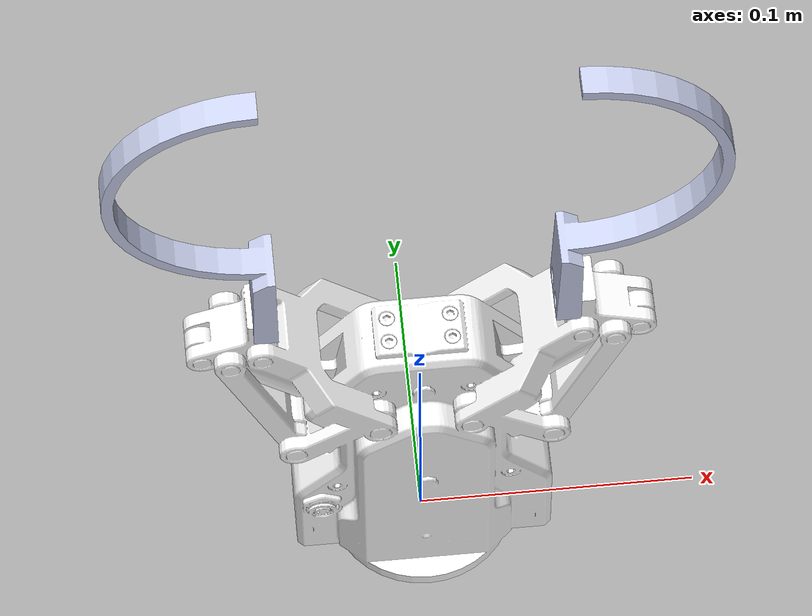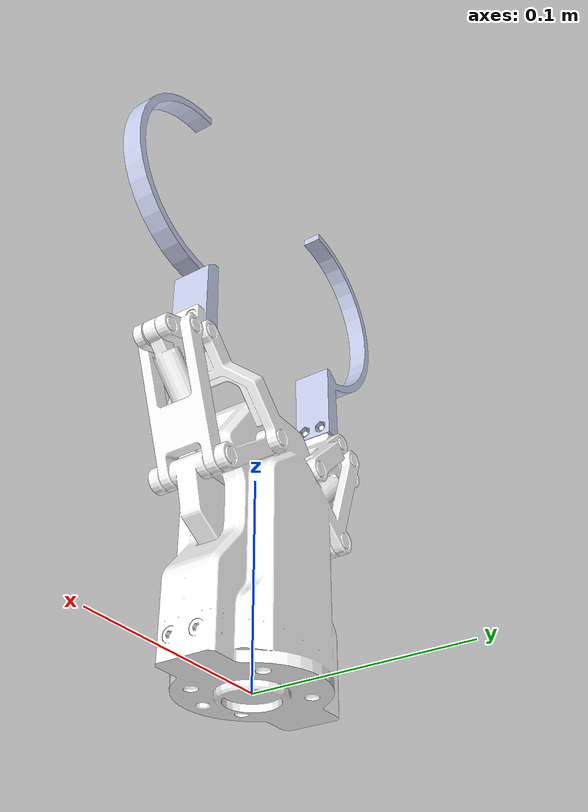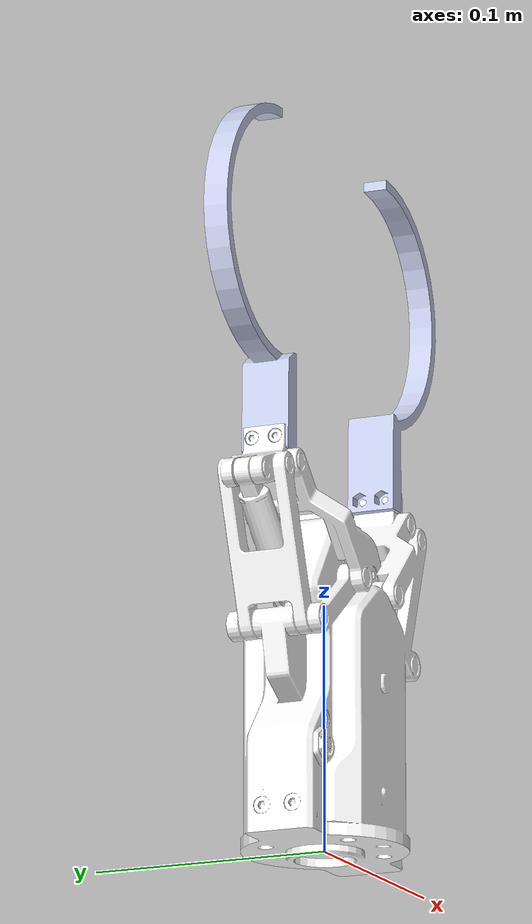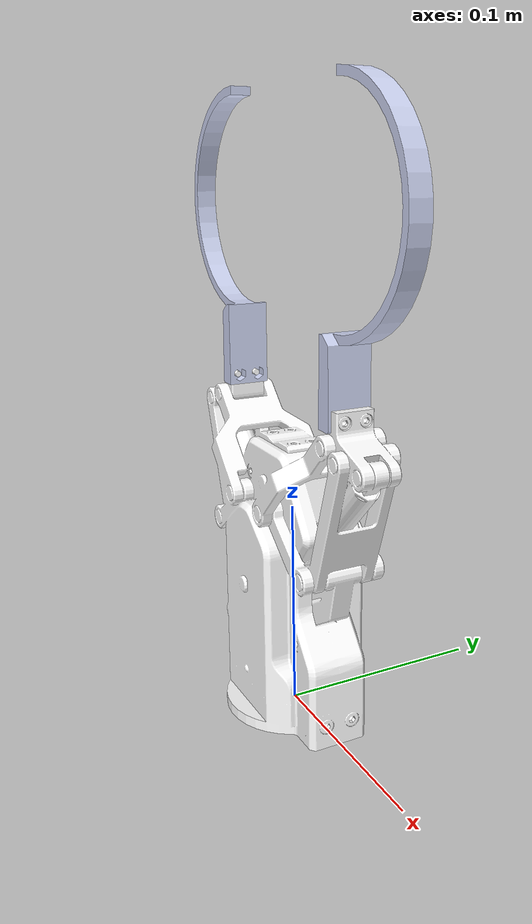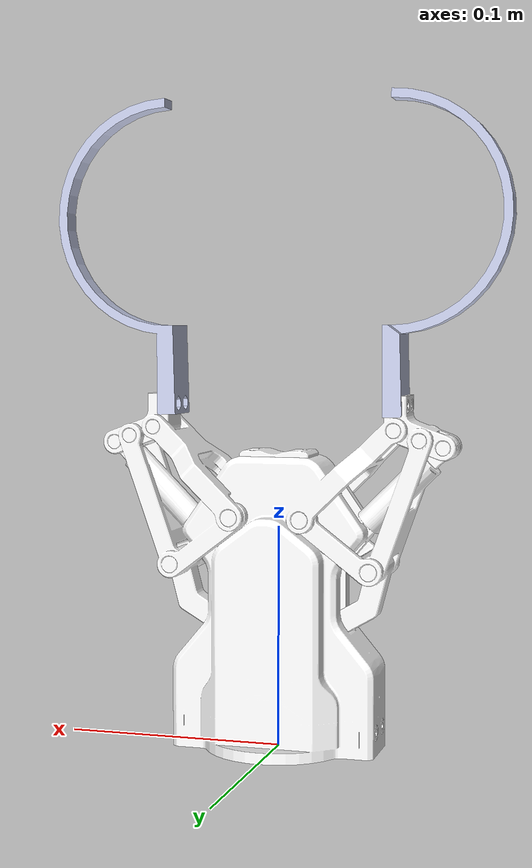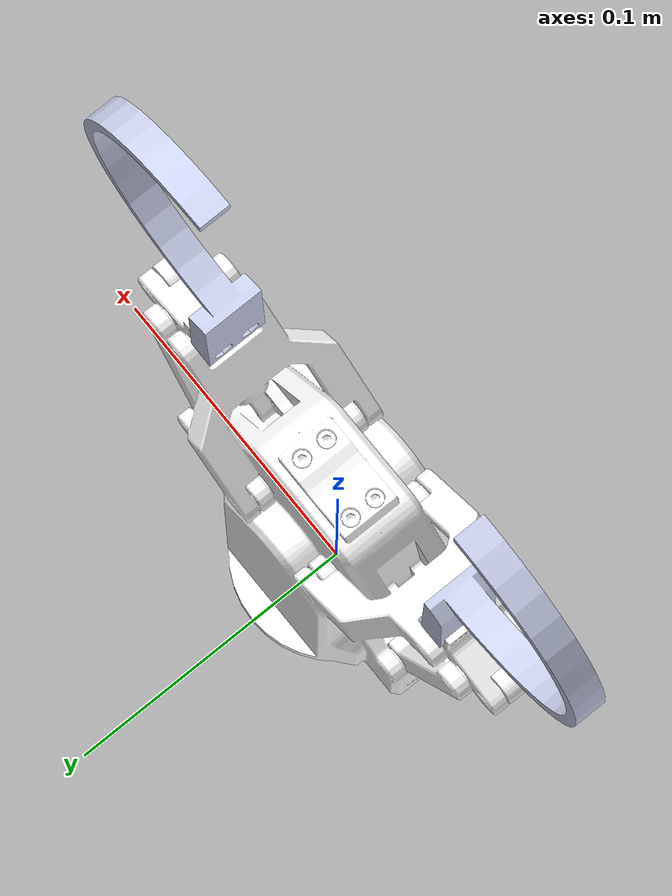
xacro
<?xml version="1.0" encoding="utf-8"?>
<robot xmlns:xacro="http://wiki.ros.org/xacro"
       name="ag95_grip_bowl">

  <link
    name="ag95_grip_base_link">
    <inertial>
      <origin
        xyz="2.0713E-10 2.0278E-05 0.088235"
        rpy="0 0 0" />
      <mass
        value="0.11208" />
      <inertia
        ixx="2.9697E-05"
        ixy="-3.6572E-13"
        ixz="2.9903E-15"
        iyy="3.7674E-05"
        iyz="3.3862E-09"
        izz="4.0516E-05" />
    </inertial>
    <visual>
      <origin
        xyz="0 0 0"
        rpy="0 0 0" />
      <geometry>
        <mesh
          filename="package://ag95_grip_bowl/meshes/ag95_grip_base_link.STL" />
      </geometry>
      <material
        name="">
        <color
          rgba="1 1 1 1" />
      </material>
    </visual>
    <collision>
      <origin
        xyz="0 0 0"
        rpy="0 0 0" />
      <geometry>
        <mesh
          filename="package://ag95_grip_bowl/meshes/ag95_grip_base_link.STL" />
      </geometry>
    </collision>
  </link>
  <link
    name="grip_tip_link">
    <inertial>
      <origin
        xyz="0.0012187 -8.2438E-06 -0.032093"
        rpy="0 0 0" />
      <mass
        value="0.024379" />
      <inertia
        ixx="4.7514E-05"
        ixy="8.2047E-13"
        ixz="5.0873E-07"
        iyy="5.6442E-05"
        iyz="-5.2306E-14"
        izz="9.9339E-06" />
    </inertial>
    <visual>
      <origin
        xyz="0 0 0"
        rpy="0 0 0" />
      <geometry>
        <mesh
          filename="package://ag95_grip_bowl/meshes/grip_tip_link.STL" />
      </geometry>
      <material
        name="">
        <color
          rgba="0.79216 0.81961 0.93333 1" />
      </material>
    </visual>
    <collision>
      <origin
        xyz="0 0 0"
        rpy="0 0 0" />
      <geometry>
        <mesh
          filename="package://ag95_grip_bowl/meshes/grip_tip_link.STL" />
      </geometry>
    </collision>
  </link>
  <joint
    name="grip_tip_joint"
    type="fixed">
    <origin
      xyz="-0.0011904 0 0.23817"
      rpy="0 0.027068 0" />
    <parent
      link="ag95_grip_base_link" />
    <child
      link="grip_tip_link" />
    <axis
      xyz="0.99963 0 0.027064" />
    <limit
      lower="0"
      upper="0"
      effort="0"
      velocity="0" />
  </joint>
</robot>
